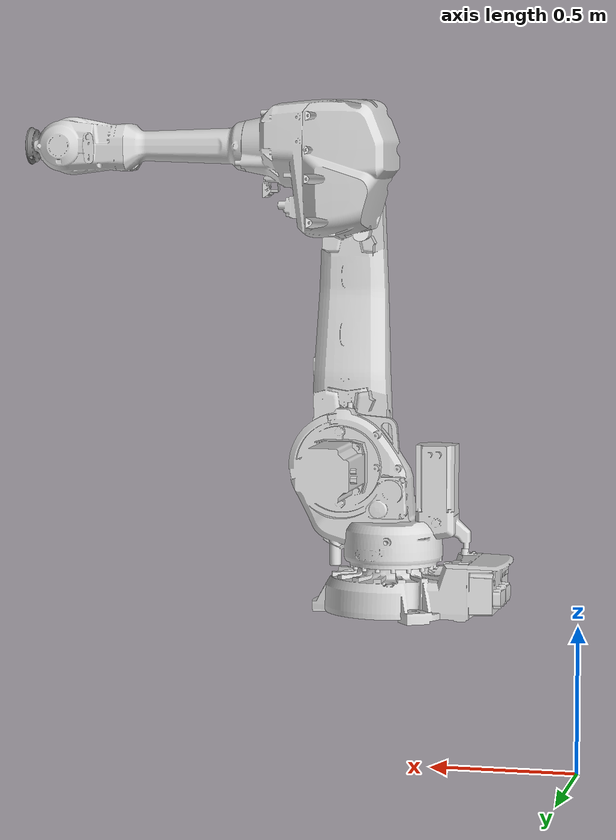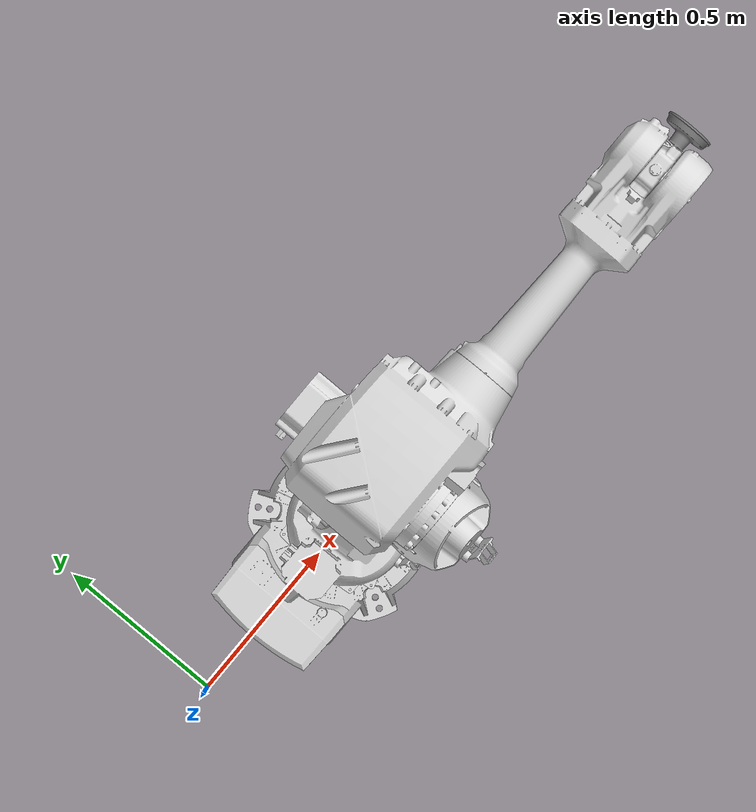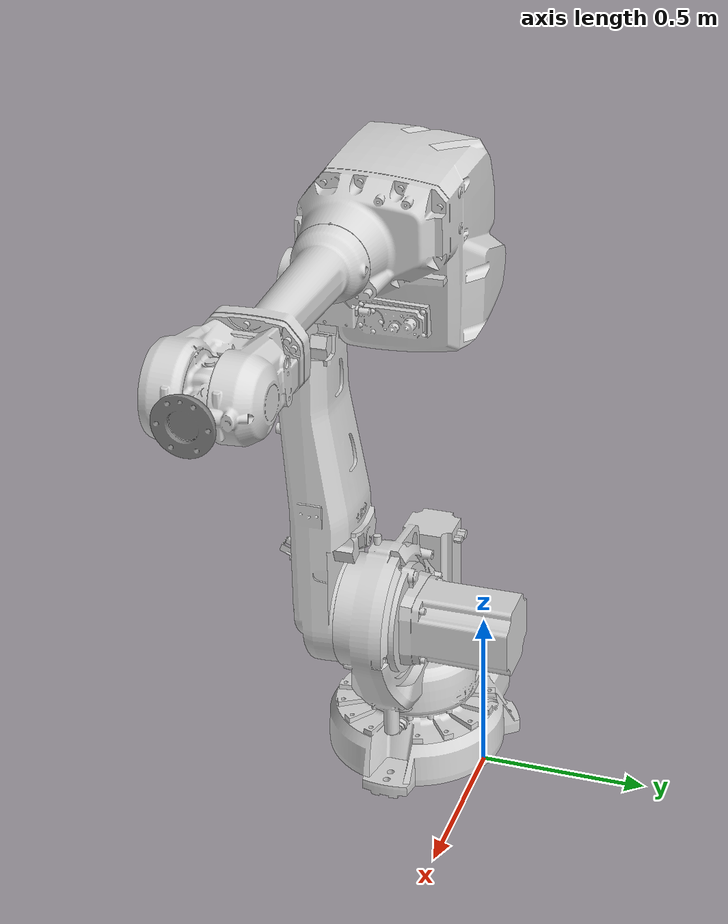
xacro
<?xml version="1.0" ?>
<robot name="abb4600_arm" xmlns:xacro="http://www.ros.org/wiki/xacro">

<xacro:include filename="$(find abb4600_arm_description)/urdf/materials.xacro" />
<xacro:include filename="$(find abb4600_arm_description)/urdf/abb4600_arm.trans" />
<xacro:include filename="$(find abb4600_arm_description)/urdf/abb4600_arm.gazebo" />
<link name="base_link">
  <inertial>
    <origin xyz="0.5388065719683329 0.0003632766666347196 0.6099645348312986" rpy="0 0 0"/>
    <mass value="237.71328449710663"/>
    <inertia ixx="3.322456" iyy="6.746895" izz="9.112071" ixy="0.030784" iyz="0.001141" ixz="0.455197"/>
  </inertial>
  <visual>
    <origin xyz="0 0 0" rpy="0 0 0"/>
    <geometry>
      <mesh filename="package://abb4600_arm_description/meshes/base_link.stl" scale="0.001 0.001 0.001"/>
    </geometry>
    <material name="opaque215215215"/>
  </visual>
  <collision>
    <origin xyz="0 0 0" rpy="0 0 0"/>
    <geometry>
      <mesh filename="package://abb4600_arm_description/meshes/base_link.stl" scale="0.001 0.001 0.001"/>
    </geometry>
  </collision>
</link>

<link name="link1_1">
  <inertial>
    <origin xyz="0.07703823314609848 0.024690140056912023 0.24069844675200514" rpy="0 0 0"/>
    <mass value="332.94668738623227"/>
    <inertia ixx="8.732817" iyy="11.378243" izz="9.105966" ixy="-0.760548" iyz="-0.812185" ixz="-2.349543"/>
  </inertial>
  <visual>
    <origin xyz="-0.63 -0.0 -0.687" rpy="0 0 0"/>
    <geometry>
      <mesh filename="package://abb4600_arm_description/meshes/link1_1.stl" scale="0.001 0.001 0.001"/>
    </geometry>
    <material name="opaque215215215"/>
  </visual>
  <collision>
    <origin xyz="-0.63 -0.0 -0.687" rpy="0 0 0"/>
    <geometry>
      <mesh filename="package://abb4600_arm_description/meshes/link1_1.stl" scale="0.001 0.001 0.001"/>
    </geometry>
  </collision>
</link>

<link name="link2_1">
  <inertial>
    <origin xyz="8.11885680672697e-05 -0.04807041025187958 0.3967756795501174" rpy="0 0 0"/>
    <mass value="220.41574953890478"/>
    <inertia ixx="17.032393" iyy="17.64881" izz="1.263078" ixy="-0.000225" iyz="0.57807" ixz="0.002216"/>
  </inertial>
  <visual>
    <origin xyz="-0.805 0.1225 -1.0225" rpy="0 0 0"/>
    <geometry>
      <mesh filename="package://abb4600_arm_description/meshes/link2_1.stl" scale="0.001 0.001 0.001"/>
    </geometry>
    <material name="opaque215215215"/>
  </visual>
  <collision>
    <origin xyz="-0.805 0.1225 -1.0225" rpy="0 0 0"/>
    <geometry>
      <mesh filename="package://abb4600_arm_description/meshes/link2_1.stl" scale="0.001 0.001 0.001"/>
    </geometry>
  </collision>
</link>

<link name="link3_1">
  <inertial>
    <origin xyz="0.04071239379184699 0.19846613160738472 0.11876191185100127" rpy="0 0 0"/>
    <mass value="400.49713290737077"/>
    <inertia ixx="8.894012" iyy="10.88805" izz="8.946828" ixy="0.577243" iyz="-0.110796" ixz="-0.921523"/>
  </inertial>
  <visual>
    <origin xyz="-0.805 0.1492 -1.9225" rpy="0 0 0"/>
    <geometry>
      <mesh filename="package://abb4600_arm_description/meshes/link3_1.stl" scale="0.001 0.001 0.001"/>
    </geometry>
    <material name="opaque215215215"/>
  </visual>
  <collision>
    <origin xyz="-0.805 0.1492 -1.9225" rpy="0 0 0"/>
    <geometry>
      <mesh filename="package://abb4600_arm_description/meshes/link3_1.stl" scale="0.001 0.001 0.001"/>
    </geometry>
  </collision>
</link>

<link name="link4_1">
  <inertial>
    <origin xyz="0.39313278775216975 -0.0019755165564121586 -0.0028460250959141398" rpy="0 0 0"/>
    <mass value="87.24410051263554"/>
    <inertia ixx="0.418056" iyy="3.624528" izz="3.763023" ixy="0.044331" iyz="0.000226" ixz="0.017987"/>
  </inertial>
  <visual>
    <origin xyz="-1.1451 -0.0 -2.0975" rpy="0 0 0"/>
    <geometry>
      <mesh filename="package://abb4600_arm_description/meshes/link4_1.stl" scale="0.001 0.001 0.001"/>
    </geometry>
    <material name="opaque215215215"/>
  </visual>
  <collision>
    <origin xyz="-1.1451 -0.0 -2.0975" rpy="0 0 0"/>
    <geometry>
      <mesh filename="package://abb4600_arm_description/meshes/link4_1.stl" scale="0.001 0.001 0.001"/>
    </geometry>
  </collision>
</link>

<link name="link5_1">
  <inertial>
    <origin xyz="-0.0010508027520477192 -0.06745153171005737 0.00040028149794890666" rpy="0 0 0"/>
    <mass value="11.796293100629127"/>
    <inertia ixx="0.023766" iyy="0.024654" izz="0.026174" ixy="-6e-06" iyz="-4e-05" ixz="-0.000134"/>
  </inertial>
  <visual>
    <origin xyz="-1.765 -0.064 -2.0975" rpy="0 0 0"/>
    <geometry>
      <mesh filename="package://abb4600_arm_description/meshes/link5_1.stl" scale="0.001 0.001 0.001"/>
    </geometry>
    <material name="opaque215215215"/>
  </visual>
  <collision>
    <origin xyz="-1.765 -0.064 -2.0975" rpy="0 0 0"/>
    <geometry>
      <mesh filename="package://abb4600_arm_description/meshes/link5_1.stl" scale="0.001 0.001 0.001"/>
    </geometry>
  </collision>
</link>

<link name="link6_1">
  <inertial>
    <origin xyz="0.04834499414174176 -0.00028927280581593517 0.00013855618719471607" rpy="0 0 0"/>
    <mass value="2.0887598324758585"/>
    <inertia ixx="0.002956" iyy="0.002242" izz="0.002257" ixy="6e-06" iyz="-2.1e-05" ixz="-2e-06"/>
  </inertial>
  <visual>
    <origin xyz="-1.83 -0.0 -2.0975" rpy="0 0 0"/>
    <geometry>
      <mesh filename="package://abb4600_arm_description/meshes/link6_1.stl" scale="0.001 0.001 0.001"/>
    </geometry>
    <material name="opaque128128128"/>
  </visual>
  <collision>
    <origin xyz="-1.83 -0.0 -2.0975" rpy="0 0 0"/>
    <geometry>
      <mesh filename="package://abb4600_arm_description/meshes/link6_1.stl" scale="0.001 0.001 0.001"/>
    </geometry>
  </collision>
</link>

<joint name="joint1" type="continuous">
  <origin xyz="0.63 0.0 0.687" rpy="0 0 0"/>
  <parent link="base_link"/>
  <child link="link1_1"/>
  <axis xyz="-0.0 -0.0 1.0"/>
</joint>

<joint name="joint2" type="continuous">
  <origin xyz="0.175 -0.1225 0.3355" rpy="0 0 0"/>
  <parent link="link1_1"/>
  <child link="link2_1"/>
  <axis xyz="-0.0 -1.0 -0.0"/>
</joint>

<joint name="joint3" type="continuous">
  <origin xyz="0.0 -0.0267 0.9" rpy="0 0 0"/>
  <parent link="link2_1"/>
  <child link="link3_1"/>
  <axis xyz="-0.0 -1.0 -0.0"/>
</joint>

<joint name="joint4" type="continuous">
  <origin xyz="0.3401 0.1492 0.175" rpy="0 0 0"/>
  <parent link="link3_1"/>
  <child link="link4_1"/>
  <axis xyz="1.0 0.0 -0.0"/>
</joint>

<joint name="joint5" type="continuous">
  <origin xyz="0.6199 0.064 0.0" rpy="0 0 0"/>
  <parent link="link4_1"/>
  <child link="link5_1"/>
  <axis xyz="0.0 -1.0 -0.0"/>
</joint>

<joint name="joint6" type="continuous">
  <origin xyz="0.065 -0.064 0.0" rpy="0 0 0"/>
  <parent link="link5_1"/>
  <child link="link6_1"/>
  <axis xyz="1.0 0.0 -0.0"/>
</joint>

</robot>

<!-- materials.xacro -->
<robot name="abb4600_arm" xmlns:xacro="http://www.ros.org/wiki/xacro" >

<material name="silver_default">
  <color rgba="0.700 0.700 0.700 1.000"/>
</material>
<material name="opaque215215215">
  <color rgba="0.8431372549019608 0.8431372549019608 0.8431372549019608 1.0"/>
</material>
<material name="opaque128128128">
  <color rgba="0.5019607843137255 0.5019607843137255 0.5019607843137255 1.0"/>
</material>

</robot>

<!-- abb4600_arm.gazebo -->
<robot name="abb4600_arm" xmlns:xacro="http://www.ros.org/wiki/xacro" >

<xacro:property name="body_color" value="Gazebo/Silver" />

<gazebo>
  <plugin name="control" filename="libgazebo_ros_control.so"/>
</gazebo>
<gazebo reference="base_link">
  <material>${body_color}</material>
  <mu1>0.2</mu1>
  <mu2>0.2</mu2>
  <selfCollide>true</selfCollide>
  <gravity>true</gravity>
</gazebo>

<gazebo reference="link1_1">
  <material>${body_color}</material>
  <mu1>0.2</mu1>
  <mu2>0.2</mu2>
  <selfCollide>true</selfCollide>
</gazebo>

<gazebo reference="link2_1">
  <material>${body_color}</material>
  <mu1>0.2</mu1>
  <mu2>0.2</mu2>
  <selfCollide>true</selfCollide>
</gazebo>

<gazebo reference="link3_1">
  <material>${body_color}</material>
  <mu1>0.2</mu1>
  <mu2>0.2</mu2>
  <selfCollide>true</selfCollide>
</gazebo>

<gazebo reference="link4_1">
  <material>${body_color}</material>
  <mu1>0.2</mu1>
  <mu2>0.2</mu2>
  <selfCollide>true</selfCollide>
</gazebo>

<gazebo reference="link5_1">
  <material>${body_color}</material>
  <mu1>0.2</mu1>
  <mu2>0.2</mu2>
  <selfCollide>true</selfCollide>
</gazebo>

<gazebo reference="link6_1">
  <material>${body_color}</material>
  <mu1>0.2</mu1>
  <mu2>0.2</mu2>
  <selfCollide>true</selfCollide>
</gazebo>

</robot>
